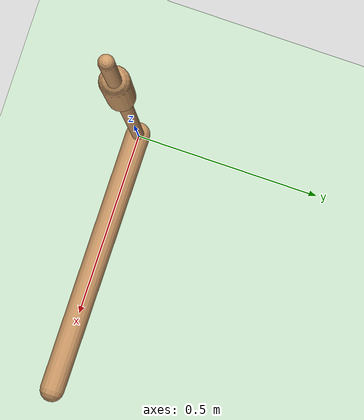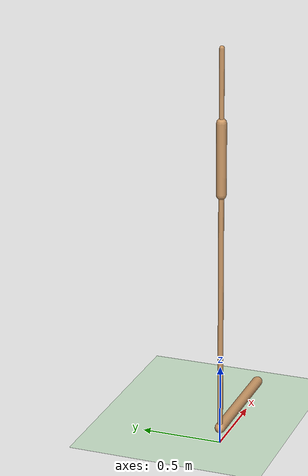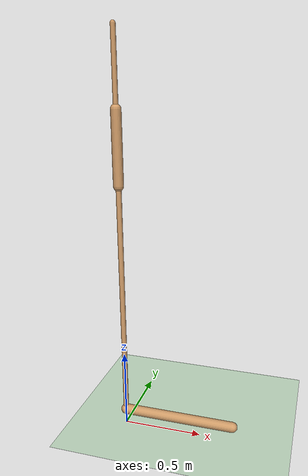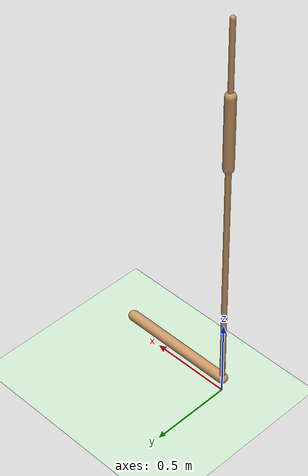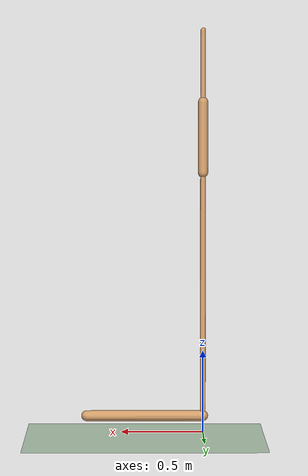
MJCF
<mujoco model="walker2d">
  <compiler angle="degree" inertiafromgeom="true" />
  <default>
    <joint armature="0.01" damping=".1" limited="true" />
    <geom conaffinity="0" condim="3" contype="1" density="1000" friction=".7 .1 .1" rgba="0.8 0.6 .4 1" />
  </default>
  <option integrator="RK4" timestep="0.002" />
  <worldbody>
    <light cutoff="100" diffuse="1 1 1" dir="-0 0 -1.3" directional="true" exponent="1" pos="0 0 1.3" specular=".1 .1 .1" />
    <geom conaffinity="1" condim="3" name="floor" pos="0 0 0" rgba="0.8 0.9 0.8 1" size="40 40 40" type="plane" material="MatPlane" />
    <body name="torso" pos="0 0 2.239965921640396">
      <camera name="track" mode="trackcom" pos="0 -5 -1.25" xyaxes="1 0 0 0 0 1" />
      <joint armature="0" axis="1 0 0" damping="0" limited="false" name="rootx" pos="0 0 -1.25" stiffness="0" type="slide" />
      <joint armature="0" axis="0 0 1" damping="0" limited="false" name="rootz" pos="0 0 -1.25" ref="1.25" stiffness="0" type="slide" />
      <joint armature="0" axis="0 1 0" damping="0" limited="false" name="rooty" pos="0 0 0" stiffness="0" type="hinge" />
      <geom friction="0.9" name="torso_geom" size="0.014779534190893173 0.21851900219917297" type="capsule" />
      <body name="thigh" pos="0 0 -0.21851900219917297">
        <joint axis="0 -1 0" name="thigh_joint" pos="0 0 0" range="-150 0" type="hinge" />
        <site name="torso_thigh_site" pos="0 0 0" size="0.01" type="sphere" rgba="1 0 0 0.5" />
        <geom friction="0.9" pos="0 0 -0.214729905128479" name="thigh_geom" size="0.030620411038398743 0.214729905128479" type="capsule" />
        <body name="leg" pos="0 0 -1.1754533648490906">
          <joint axis="0 -1 0" name="leg_joint" pos="0 0 0.7459935545921326" range="-150 0" type="hinge" />
          <site name="thigh_leg_site" pos="0 0 0.25" size="0.01" type="sphere" rgba="1 0 0 0.5" />
          <geom friction="0.9" name="leg_geom" size="0.01622968167066574 0.7459935545921326" type="capsule" />
          <body name="foot" pos="0.7114415168762207 0 -0.8459935545921325">
            <joint axis="0 -1 0" name="foot_joint" pos="-0.7114415168762207 0 0.1" range="-45 45" type="hinge" />
            <site name="leg_foot_site" pos="-0.2 0 0.1" size="0.01" type="sphere" rgba="1 0 0 0.5" />
            <geom friction="0.9" pos="-0.35572075843811035 0 0.1" quat="0.70710678118654757 0 -0.70710678118654746 0" name="foot_geom" size="0.03262883797287941 0.35572075843811035" type="capsule" />
          </body>
        </body>
      </body>

      <body name="thigh_left" pos="0 0 -0.21851900219917297">
        <joint axis="0 -1 0" name="thigh_left_joint" pos="0 0 0" range="-150 0" type="hinge" />
        <site name="torso_thigh_left_site" pos="0 0 0" size="0.01" type="sphere" rgba="1 0 0 0.5" />
        <geom friction="0.9" name="thigh_left_geom" rgba=".7 .3 .6 1" size="0.030620411038398743 0.214729905128479" pos="0 0 -0.214729905128479" type="capsule" />
        <body name="leg_left" pos="0 0 -1.1754533648490906">
          <joint axis="0 -1 0" name="leg_left_joint" pos="0 0 0.7459935545921326" range="-150 0" type="hinge" />
          <site name="thigh_leg_left_site" pos="0 0 0.25" size="0.01" type="sphere" rgba="1 0 0 0.5" />
          <geom friction="0.9" name="leg_left_geom" rgba=".7 .3 .6 1" size="0.01622968167066574 0.7459935545921326" type="capsule" />
          <body name="foot_left" pos="0.7114415168762207 0 -0.8459935545921325">
            <joint axis="0 -1 0" name="foot_left_joint" pos="-0.7114415168762207 0 0.1" range="-45 45" type="hinge" />
            <site name="leg_foot_left_site" pos="-0.2 0 0.1" size="0.01" type="sphere" rgba="1 0 0 0.5" />
            <geom friction="1.9" name="foot_left_geom" rgba=".7 .3 .6 1" size="0.03262883797287941 0.35572075843811035" pos="-0.35572075843811035 0 0.1" type="capsule" quat="0.70710678118654757 0 -0.70710678118654746 0" />
          </body>
        </body>
      </body>
    </body>
  </worldbody>
  <actuator>

    <motor ctrllimited="true" ctrlrange="-1.0 1.0" gear="35.79250035156908" joint="thigh_joint" />
    <motor ctrllimited="true" ctrlrange="-1.0 1.0" gear="49.12415433571364" joint="leg_joint" />
    <motor ctrllimited="true" ctrlrange="-1.0 1.0" gear="105.19859110593863" joint="foot_joint" />
    <motor ctrllimited="true" ctrlrange="-1.0 1.0" gear="35.79250035156908" joint="thigh_left_joint" />
    <motor ctrllimited="true" ctrlrange="-1.0 1.0" gear="49.12415433571364" joint="leg_left_joint" />
    <motor ctrllimited="true" ctrlrange="-1.0 1.0" gear="105.19859110593863" joint="foot_left_joint" />

  </actuator>
    <asset>
        <texture type="skybox" builtin="gradient" rgb1=".4 .5 .6" rgb2="0 0 0" width="100" height="100" />
        <texture builtin="flat" height="1278" mark="cross" markrgb="1 1 1" name="texgeom" random="0.01" rgb1="0.8 0.6 0.4" rgb2="0.8 0.6 0.4" type="cube" width="127" />
        <texture builtin="checker" height="100" name="texplane" rgb1="0 0 0" rgb2="0.8 0.8 0.8" type="2d" width="100" />
        <material name="MatPlane" reflectance="0.5" shininess="1" specular="1" texrepeat="60 60" texture="texplane" />
        <material name="geom" texture="texgeom" texuniform="true" />
    </asset>

  <sensor>
    <force site="torso_thigh_site" name="torso_thigh_sensor" />
    <force site="thigh_leg_site" name="thigh_leg_sensor" />
    <force site="leg_foot_site" name="leg_foot_sensor" />
    <force site="torso_thigh_left_site" name="torso_thigh_left_sensor" />
    <force site="thigh_leg_left_site" name="thigh_leg_left_sensor" />
    <force site="leg_foot_left_site" name="leg_foot_left_sensor" />
  </sensor>
</mujoco>
